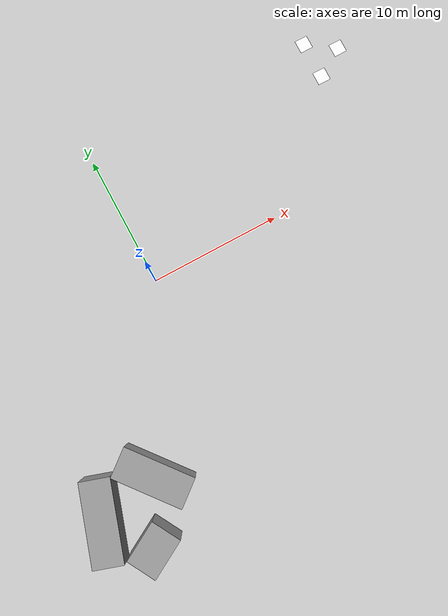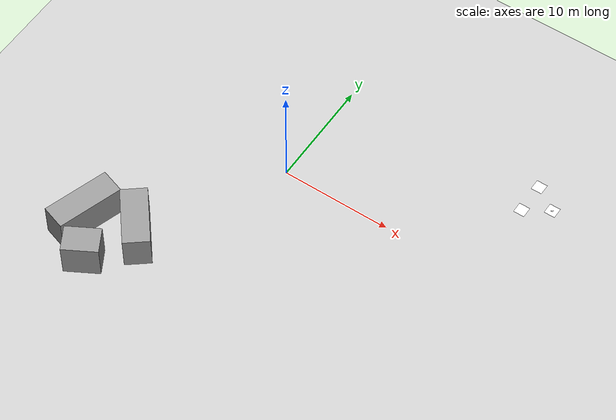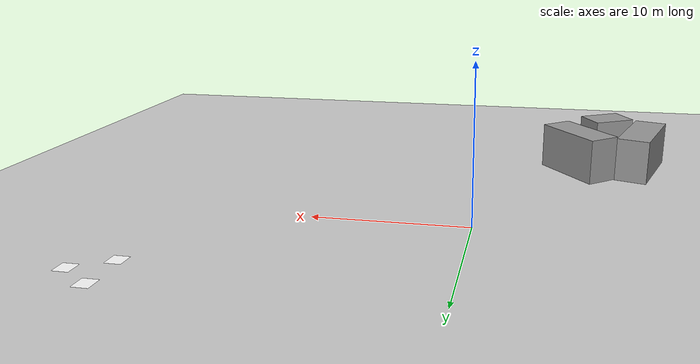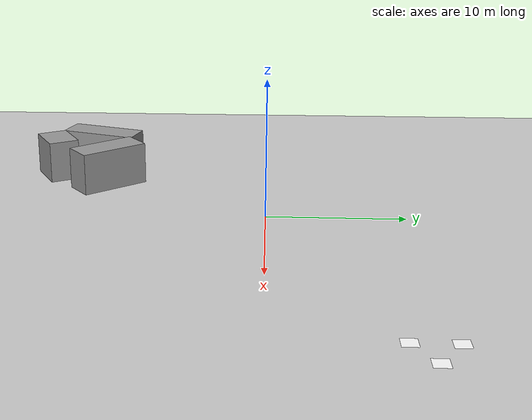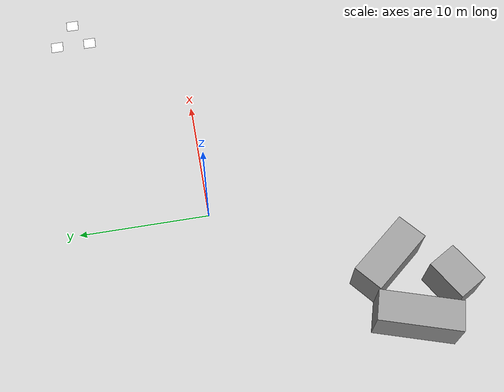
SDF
<sdf version="1.6">
 <world name="default">
  <light name="sun" type="directional">
   <pose>0 0 10 0 -0 0</pose>
   <diffuse>0.8 0.8 0.8 1</diffuse>
   <specular>0.2 0.2 0.2 1</specular>
   <attenuation>
    <range>1000</range>
    <constant>0.9</constant>
    <linear>0.01</linear>
    <quadratic>0.001</quadratic>
   </attenuation>
   <direction>-0.5 0.1 -0.9</direction>
  </light>
  <model name="ground_plane">
   <static>1</static>
   <link name="link">
    <collision name="collision">
     <geometry><plane><normal>0 0 1</normal><size>100 100</size></plane></geometry>
     <surface><friction><ode><mu>100</mu><mu2>50</mu2></ode></friction></surface>
    </collision>
    <visual name="visual">
     <cast_shadows>0</cast_shadows>
     <geometry><plane><normal>0 0 1</normal><size>100 100</size></plane></geometry>
     <material>
      <script><uri>file://media/materials/scripts/gazebo.material</uri><name>Gazebo/Grey</name></script>
     </material>
    </visual>
   </link>
  </model>
  <gravity>0 0 -9.8</gravity>
  <magnetic_field>6e-06 2.3e-05 -4.2e-05</magnetic_field>
  <atmosphere type="adiabatic"/>
  <physics name="default_physics" default="0" type="ode">
   <max_step_size>0.001</max_step_size>
   <real_time_factor>1</real_time_factor>
   <real_time_update_rate>1000</real_time_update_rate>
  </physics>
  <scene><ambient>0.4 0.4 0.4 1</ambient><background>0.7 0.7 0.7 1</background><shadows>1</shadows></scene>
  <spherical_coordinates>
   <surface_model>EARTH_WGS84</surface_model>
   <latitude_deg>0</latitude_deg>
   <longitude_deg>0</longitude_deg>
   <elevation>0</elevation>
   <heading_deg>0</heading_deg>
  </spherical_coordinates>
  <model name="aruco_visual_marker_0">
   <link name="marker">
    <visual name="visual">
     <geometry><box><size>1 1 1e-05</size></box></geometry>
     <material>
      <script>
       <uri>model://aruco_visual_marker_0/materials/scripts</uri>
       <uri>model://aruco_visual_marker_0/materials/textures</uri>
       <name>ArucoVisualMarker0/Marker</name>
      </script>
      <ambient>1 1 1 1</ambient>
      <diffuse>1 1 1 1</diffuse>
      <specular>0 0 0 1</specular>
      <emissive>1 1 1 0</emissive>
      <shader type="vertex"><normal_map>__default__</normal_map></shader>
     </material>
    </visual>
    <collision name="collision"><geometry><box><size>0.1778 0.1778 1e-05</size></box></geometry></collision>
   </link>
   <link name="marker_pad">
    <pose frame="marker">0 0 -1e-05 0 -0 0</pose>
    <visual name="visual">
     <geometry><box><size>0.1778 0.1778 1e-05</size></box></geometry>
     <material>
      <lighting>1</lighting>
      <script><uri>file://media/materials/scripts/gazebo.material</uri><name>Gazebo/White</name></script>
      <ambient>0.3 0.3 0.3 1</ambient>
      <diffuse>0.7 0.7 0.7 1</diffuse>
      <specular>0.01 0.01 0.01 1</specular>
      <emissive>1 1 1 0</emissive>
      <shader type="vertex"><normal_map>__default__</normal_map></shader>
     </material>
    </visual>
    <collision name="collision"><geometry><box><size>0.1778 0.1778 1e-05</size></box></geometry></collision>
   </link>
   <joint name="marker_JOINT_marker_pad" type="revolute">
    <parent>marker</parent>
    <child>marker_pad</child>
    <axis>
     <xyz>0 0 1</xyz>
     <limit><upper>0</upper><lower>0</lower></limit>
     <use_parent_model_frame>0</use_parent_model_frame>
     <dynamics><spring_reference>0</spring_reference><spring_stiffness>0</spring_stiffness></dynamics>
    </axis>
   </joint>
   <static>1</static>
   <pose>18.3512 10.6743 0 0 -0 0</pose>
  </model>
  <model name="aruco_visual_marker_5">
   <link name="marker">
    <visual name="visual">
     <geometry><box><size>1 1 1e-05</size></box></geometry>
     <material>
      <script>
       <uri>model://aruco_visual_marker_5/materials/scripts</uri>
       <uri>model://aruco_visual_marker_5/materials/textures</uri>
       <name>ArucoVisualMarker5/Marker</name>
      </script>
      <ambient>1 1 1 1</ambient>
      <diffuse>1 1 1 1</diffuse>
      <specular>0 0 0 1</specular>
      <emissive>1 1 1 0</emissive>
      <shader type="vertex"><normal_map>__default__</normal_map></shader>
     </material>
    </visual>
    <collision name="collision"><geometry><box><size>0.1778 0.1778 1e-05</size></box></geometry></collision>
   </link>
   <link name="marker_pad">
    <pose frame="marker">0 0 -1e-05 0 -0 0</pose>
    <visual name="visual">
     <geometry><box><size>0.1778 0.1778 1e-05</size></box></geometry>
     <material>
      <lighting>1</lighting>
      <script><uri>file://media/materials/scripts/gazebo.material</uri><name>Gazebo/White</name></script>
      <ambient>0.3 0.3 0.3 1</ambient>
      <diffuse>0.7 0.7 0.7 1</diffuse>
      <specular>0.01 0.01 0.01 1</specular>
      <emissive>1 1 1 0</emissive>
      <shader type="vertex"><normal_map>__default__</normal_map></shader>
     </material>
    </visual>
    <collision name="collision"><geometry><box><size>0.1778 0.1778 1e-05</size></box></geometry></collision>
   </link>
   <joint name="marker_JOINT_marker_pad" type="revolute">
    <parent>marker</parent>
    <child>marker_pad</child>
    <axis>
     <xyz>0 0 1</xyz>
     <limit><upper>0</upper><lower>0</lower></limit>
     <use_parent_model_frame>0</use_parent_model_frame>
     <dynamics><spring_reference>0</spring_reference><spring_stiffness>0</spring_stiffness></dynamics>
    </axis>
   </joint>
   <static>1</static>
   <pose>20.482 9.209 0 0 -0 0</pose>
  </model>
  <model name="aruco_visual_marker_6">
   <link name="marker">
    <visual name="visual">
     <geometry><box><size>1 1 1e-05</size></box></geometry>
     <material>
      <script>
       <uri>model://aruco_visual_marker_6/materials/scripts</uri>
       <uri>model://aruco_visual_marker_6/materials/textures</uri>
       <name>ArucoVisualMarker6/Marker</name>
      </script>
      <ambient>1 1 1 1</ambient>
      <diffuse>1 1 1 1</diffuse>
      <specular>0 0 0 1</specular>
      <emissive>1 1 1 0</emissive>
      <shader type="vertex"><normal_map>__default__</normal_map></shader>
     </material>
    </visual>
    <collision name="collision"><geometry><box><size>0.1778 0.1778 1e-05</size></box></geometry></collision>
   </link>
   <link name="marker_pad">
    <pose frame="marker">0 0 -1e-05 0 -0 0</pose>
    <visual name="visual">
     <geometry><box><size>0.1778 0.1778 1e-05</size></box></geometry>
     <material>
      <lighting>1</lighting>
      <script><uri>file://media/materials/scripts/gazebo.material</uri><name>Gazebo/White</name></script>
      <ambient>0.3 0.3 0.3 1</ambient>
      <diffuse>0.7 0.7 0.7 1</diffuse>
      <specular>0.01 0.01 0.01 1</specular>
      <emissive>1 1 1 0</emissive>
      <shader type="vertex"><normal_map>__default__</normal_map></shader>
     </material>
    </visual>
    <collision name="collision"><geometry><box><size>0.1778 0.1778 1e-05</size></box></geometry></collision>
   </link>
   <joint name="marker_JOINT_marker_pad" type="revolute">
    <parent>marker</parent>
    <child>marker_pad</child>
    <axis>
     <xyz>0 0 1</xyz>
     <limit><upper>0</upper><lower>0</lower></limit>
     <use_parent_model_frame>0</use_parent_model_frame>
     <dynamics><spring_reference>0</spring_reference><spring_stiffness>0</spring_stiffness></dynamics>
    </axis>
   </joint>
   <static>1</static>
   <pose>18.3317 7.85826 0 0 -0 0</pose>
  </model>
  <audio><device>default</device></audio>
  <model name="unit_box">
   <pose>-11.0486 -13.3283 1.53401 0 -0 -0.312537</pose>
   <link name="link">
    <inertial>
     <mass>1</mass>
     <inertia>
      <ixx>0.166667</ixx>
      <ixy>0</ixy>
      <ixz>0</ixz>
      <iyy>0.166667</iyy>
      <iyz>0</iyz>
      <izz>0.166667</izz>
     </inertia>
    </inertial>
    <collision name="collision"><geometry><box><size>2.23549 5.99103 3.06802</size></box></geometry></collision>
    <visual name="visual">
     <geometry><box><size>2.23549 5.99103 3.06802</size></box></geometry>
     <material>
      <script><name>Gazebo/Grey</name><uri>file://media/materials/scripts/gazebo.material</uri></script>
     </material>
    </visual>
   </link>
  </model>
  <model name="unit_box_0">
   <pose>-6.51979 -12.2894 1.57997 0 1e-06 -0.895565</pose>
   <link name="link">
    <inertial>
     <mass>1</mass>
     <inertia>
      <ixx>0.166667</ixx>
      <ixy>0</ixy>
      <ixz>0</ixz>
      <iyy>0.166667</iyy>
      <iyz>0</iyz>
      <izz>0.166667</izz>
     </inertia>
    </inertial>
    <collision name="collision"><geometry><box><size>5.34124 2.31816 3.15994</size></box></geometry></collision>
    <visual name="visual">
     <geometry><box><size>5.34124 2.31816 3.15994</size></box></geometry>
     <material>
      <script><name>Gazebo/Grey</name><uri>file://media/materials/scripts/gazebo.material</uri></script>
     </material>
    </visual>
   </link>
  </model>
  <model name="unit_box_0_clone">
   <pose>-8.72433 -16.6081 1.57997 0 -0 0.511378</pose>
   <link name="link">
    <inertial>
     <mass>1</mass>
     <inertia>
      <ixx>0.166667</ixx>
      <ixy>0</ixy>
      <ixz>0</ixz>
      <iyy>0.166667</iyy>
      <iyz>0</iyz>
      <izz>0.166667</izz>
     </inertia>
    </inertial>
    <collision name="collision"><geometry><box><size>3.14299 2.31817 3.15994</size></box></geometry></collision>
    <visual name="visual">
     <geometry><box><size>3.14299 2.31817 3.15994</size></box></geometry>
     <material>
      <script><name>Gazebo/Grey</name><uri>file://media/materials/scripts/gazebo.material</uri></script>
     </material>
    </visual>
   </link>
  </model>
 </world>
</sdf>
